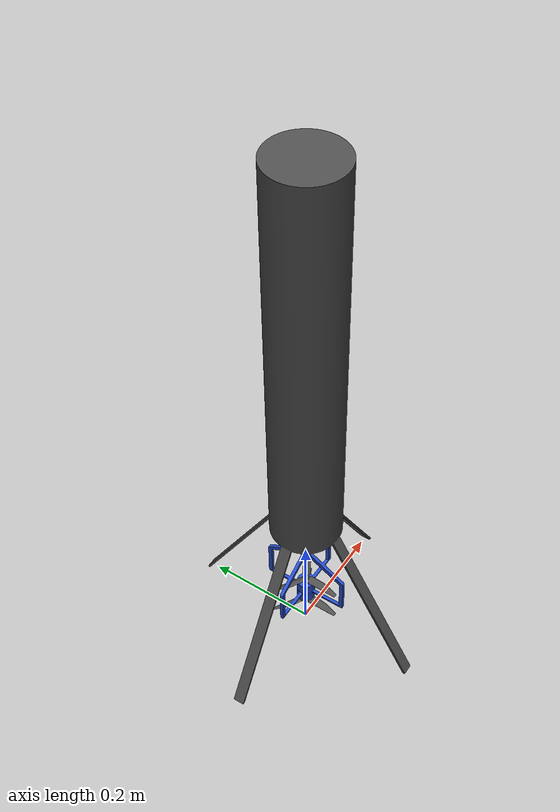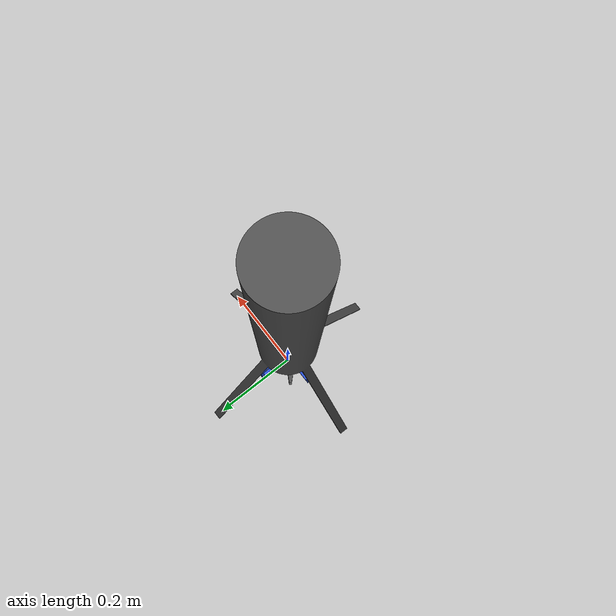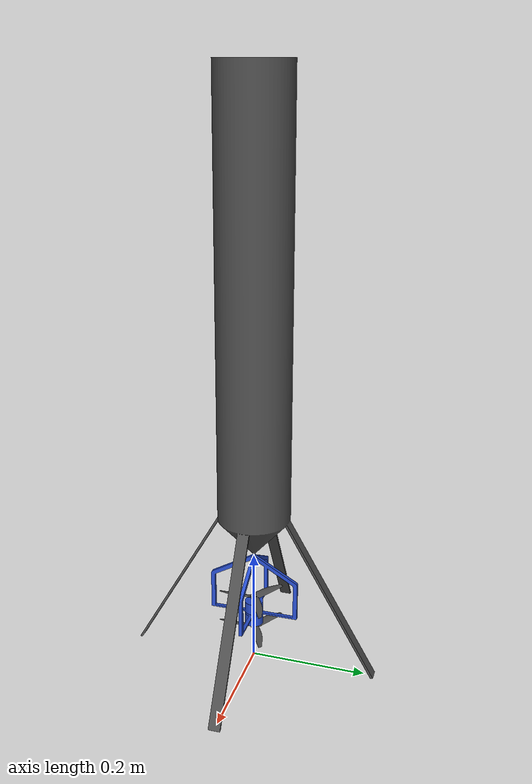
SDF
<?xml version='1.0'?>
<sdf version='1.6'>
  <model name='emborocket'>
    <link name='/imu_link'>
      <pose frame=''>0 0 0.75 0 -0 0</pose>
      <inertial>
        <pose frame=''>0 0 0 0 -0 0</pose>
        <mass>0</mass>
        <inertia>
          <ixx>0</ixx>
          <ixy>0</ixy>
          <ixz>0</ixz>
          <iyy>0</iyy>
          <iyz>0</iyz>
          <izz>0</izz>
        </inertia>
      </inertial>
      <self_collide>0</self_collide>
      <enable_wind>0</enable_wind>
      <kinematic>0</kinematic>
      <gravity>1</gravity>
    </link>
    <link name='base_link'>
      <pose frame=''>0 0 0.75 0 -0 0</pose>
      <inertial>
        <pose frame=''>0 0 0 0 -0 0</pose>
        <mass>1</mass>
        <inertia>
          <ixx>0.047931</ixx>
          <ixy>0</ixy>
          <ixz>0</ixz>
          <iyy>0.047931</iyy>
          <iyz>0</iyz>
          <izz>0.002112</izz>
        </inertia>
      </inertial>
      <gravity>1</gravity>
      <velocity_decay/>
      <self_collide>0</self_collide>
      <enable_wind>0</enable_wind>
      <kinematic>0</kinematic>
      <visual name='base_link_inertia_visual'>
        <pose frame=''>0 0 -0.75 0 -0 0</pose>
        <geometry>
          <mesh>
            <uri>/home/lukas/Firmware/Tools/sitl_gazebo/models/rotors_description/meshes/rocket_body.stl</uri>
            <scale>0.001 0.001 0.001</scale>
          </mesh>
        </geometry>
        <material>
          <script>
            <name>Gazebo/DarkGrey</name>
            <uri>file://media/materials/scripts/gazebo.material</uri>
          </script>
          <shader type='pixel'>
            <normal_map>__default__</normal_map>
          </shader>
          <ambient>0.175 0.175 0.175 1</ambient>
          <diffuse>0.175 0.175 0.175 1</diffuse>
          <specular>0.175 0.175 0.175 1</specular>
          <emissive>0 0 0 1</emissive>
        </material>
        <transparency>0</transparency>
        <cast_shadows>1</cast_shadows>
      </visual>
      <collision name='base_link_inertia_collision'>
        <laser_retro>0</laser_retro>
        <max_contacts>10</max_contacts>
        <pose frame=''>0 0 -0.745 0 -0 0.785</pose>
        <geometry>
          <box>
            <size>0.32 0.32 0.01</size>
          </box>
        </geometry>
        <surface>
          <friction>
            <ode>
              <mu>1</mu>
              <mu2>1</mu2>
              <fdir1>0 0 0</fdir1>
              <slip1>0</slip1>
              <slip2>0</slip2>
            </ode>
            <torsional>
              <coefficient>1</coefficient>
              <patch_radius>0</patch_radius>
              <surface_radius>0</surface_radius>
              <use_patch_radius>1</use_patch_radius>
              <ode>
                <slip>0</slip>
              </ode>
            </torsional>
          </friction>
          <bounce>
            <restitution_coefficient>0</restitution_coefficient>
            <threshold>1e+06</threshold>
          </bounce>
          <contact>
            <collide_without_contact>0</collide_without_contact>
            <collide_without_contact_bitmask>1</collide_without_contact_bitmask>
            <collide_bitmask>1</collide_bitmask>
            <ode>
              <soft_cfm>0</soft_cfm>
              <soft_erp>0.2</soft_erp>
              <kp>1e+13</kp>
              <kd>1</kd>
              <max_vel>0</max_vel>
              <min_depth>0.001</min_depth>
            </ode>
            <bullet>
              <split_impulse>1</split_impulse>
              <split_impulse_penetration_threshold>-0.01</split_impulse_penetration_threshold>
              <soft_cfm>0</soft_cfm>
              <soft_erp>0.2</soft_erp>
              <kp>1e+13</kp>
              <kd>1</kd>
            </bullet>
          </contact>
        </surface>
      </collision>
      <collision name='collision_2'>
        <laser_retro>0</laser_retro>
        <max_contacts>10</max_contacts>
        <pose frame=''>0 0 0.265 0 -0 0</pose>
        <geometry>
          <cylinder>
            <radius>0.065</radius>
            <length>0.01</length>
          </cylinder>
        </geometry>
        <surface>
          <friction>
            <ode>
              <mu>1</mu>
              <mu2>1</mu2>
              <fdir1>0 0 0</fdir1>
              <slip1>0</slip1>
              <slip2>0</slip2>
            </ode>
            <torsional>
              <coefficient>1</coefficient>
              <patch_radius>0</patch_radius>
              <surface_radius>0</surface_radius>
              <use_patch_radius>1</use_patch_radius>
              <ode>
                <slip>0</slip>
              </ode>
            </torsional>
          </friction>
          <bounce>
            <restitution_coefficient>0</restitution_coefficient>
            <threshold>1e+06</threshold>
          </bounce>
          <contact>
            <collide_without_contact>0</collide_without_contact>
            <collide_without_contact_bitmask>1</collide_without_contact_bitmask>
            <collide_bitmask>1</collide_bitmask>
            <ode>
              <soft_cfm>0</soft_cfm>
              <soft_erp>0.2</soft_erp>
              <kp>1e+13</kp>
              <kd>1</kd>
              <max_vel>0</max_vel>
              <min_depth>0.001</min_depth>
            </ode>
            <bullet>
              <split_impulse>1</split_impulse>
              <split_impulse_penetration_threshold>-0.01</split_impulse_penetration_threshold>
              <soft_cfm>0</soft_cfm>
              <soft_erp>0.2</soft_erp>
              <kp>1e+13</kp>
              <kd>1</kd>
            </bullet>
          </contact>
        </surface>
      </collision>
    </link>
    <link name='rotor_0'>
      <pose frame=''>0 0 0.2019 0 -0 0</pose>
      <inertial>
        <pose frame=''>0 0 0 0 -0 0</pose>
        <mass>0.005</mass>
        <inertia>
          <ixx>9.7e-07</ixx>
          <ixy>0</ixy>
          <ixz>0</ixz>
          <iyy>0.0002731</iyy>
          <iyz>0</iyz>
          <izz>0.000274</izz>
        </inertia>
      </inertial>
      <gravity>1</gravity>
      <velocity_decay/>
      <self_collide>0</self_collide>
      <enable_wind>0</enable_wind>
      <kinematic>0</kinematic>
      <visual name='rotor_0_visual'>
        <pose frame=''>0 0 0 0 -0 0</pose>
        <geometry>
          <mesh>
            <uri>/home/lukas/Firmware/Tools/sitl_gazebo/models/rotors_description/meshes/propeller_mount.stl</uri>
            <scale>0.001 0.001 0.001</scale>
          </mesh>
        </geometry>
        <material>
          <script>
            <name>Gazebo/Blue</name>
            <uri>file://media/materials/scripts/gazebo.material</uri>
          </script>
          <shader type='pixel'>
            <normal_map>__default__</normal_map>
          </shader>
          <ambient>0 0 1 1</ambient>
          <diffuse>0 0 1 1</diffuse>
          <specular>0.1 0.1 0.1 1</specular>
          <emissive>0 0 0 1</emissive>
        </material>
        <transparency>0</transparency>
        <cast_shadows>1</cast_shadows>
      </visual>
    </link>
    <link name='rotor_1'>
      <pose frame=''>0 0 0.1176 0 -0 0</pose>
      <inertial>
        <pose frame=''>0 0 0 0 -0 0</pose>
        <mass>0</mass>
        <inertia>
          <ixx>0</ixx>
          <ixy>0</ixy>
          <ixz>0</ixz>
          <iyy>0</iyy>
          <iyz>0</iyz>
          <izz>0</izz>
        </inertia>
      </inertial>
      <gravity>1</gravity>
      <velocity_decay/>
      <self_collide>0</self_collide>
      <enable_wind>0</enable_wind>
      <kinematic>0</kinematic>
      <visual name='rotor_1_visual'>
        <pose frame=''>0 -0.009 0 1.571 -0 0</pose>
        <geometry>
          <mesh>
            <uri>/home/lukas/Firmware/Tools/sitl_gazebo/models/rotors_description/meshes/propeller.stl</uri>
            <scale>0.001 0.001 0.001</scale>
          </mesh>
        </geometry>
        <material>
          <script>
            <name>Gazebo/DarkGrey</name>
            <uri>file://media/materials/scripts/gazebo.material</uri>
          </script>
          <shader type='pixel'>
            <normal_map>__default__</normal_map>
          </shader>
          <ambient>0.175 0.175 0.175 1</ambient>
          <diffuse>0.175 0.175 0.175 1</diffuse>
          <specular>0.175 0.175 0.175 1</specular>
          <emissive>0 0 0 1</emissive>
        </material>
        <transparency>0</transparency>
        <cast_shadows>1</cast_shadows>
      </visual>
    </link>
    <link name='rotor_3'>
      <pose frame=''>0 0 0.059 0 -0 0</pose>
      <inertial>
        <pose frame=''>0 0 0 0 -0 0</pose>
        <mass>0</mass>
        <inertia>
          <ixx>0</ixx>
          <ixy>0</ixy>
          <ixz>0</ixz>
          <iyy>0</iyy>
          <iyz>0</iyz>
          <izz>0</izz>
        </inertia>
      </inertial>
      <gravity>1</gravity>
      <velocity_decay/>
      <self_collide>0</self_collide>
      <enable_wind>0</enable_wind>
      <kinematic>0</kinematic>
      <visual name='rotor_3_visual'>
        <pose frame=''>0 -0.009 0 1.571 -0 0</pose>
        <geometry>
          <mesh>
            <uri>/home/lukas/Firmware/Tools/sitl_gazebo/models/rotors_description/meshes/propeller.stl</uri>
            <scale>0.001 0.001 0.001</scale>
          </mesh>
        </geometry>
        <material>
          <script>
            <name>Gazebo/DarkGrey</name>
            <uri>file://media/materials/scripts/gazebo.material</uri>
          </script>
          <shader type='pixel'>
            <normal_map>__default__</normal_map>
          </shader>
          <ambient>0.175 0.175 0.175 1</ambient>
          <diffuse>0.175 0.175 0.175 1</diffuse>
          <specular>0.175 0.175 0.175 1</specular>
          <emissive>0 0 0 1</emissive>
        </material>
        <transparency>0</transparency>
        <cast_shadows>1</cast_shadows>
      </visual>
    </link>
    <model name='gps0'>
      <link name='link'>
        <pose frame=''>0 0 0.75 0 -0 0</pose>
        <inertial>
          <pose frame=''>0 0 0 0 -0 0</pose>
          <mass>0.01</mass>
          <inertia>
            <ixx>2.1733e-06</ixx>
            <ixy>0</ixy>
            <ixz>0</ixz>
            <iyy>2.1733e-06</iyy>
            <iyz>0</iyz>
            <izz>1.8e-07</izz>
          </inertia>
        </inertial>
        <visual name='visual'>
          <geometry>
            <cylinder>
              <radius>0.01</radius>
              <length>0.002</length>
            </cylinder>
          </geometry>
          <material>
            <script>
              <name>Gazebo/Black</name>
              <uri>__default__</uri>
            </script>
          </material>
        </visual>
        <sensor name='gps' type='gps'>
          <pose frame=''>0 0 0 0 -0 0</pose>
          <plugin name='gps_plugin' filename='libgazebo_gps_plugin.so'>
            <robotNamespace/>
            <gpsNoise>1</gpsNoise>
            <gpsXYRandomWalk>2.0</gpsXYRandomWalk>
            <gpsZRandomWalk>4.0</gpsZRandomWalk>
            <gpsXYNoiseDensity>0.0002</gpsXYNoiseDensity>
            <gpsZNoiseDensity>0.0004</gpsZNoiseDensity>
            <gpsVXYNoiseDensity>0.2</gpsVXYNoiseDensity>
            <gpsVZNoiseDensity>0.4</gpsVZNoiseDensity>
          </plugin>
          <gps/>
        </sensor>
        <self_collide>0</self_collide>
        <enable_wind>0</enable_wind>
        <kinematic>0</kinematic>
      </link>
      <pose frame=''>0 0 0 0 -0 0</pose>
    </model>
    <joint name='/imu_joint' type='revolute'>
      <parent>base_link</parent>
      <child>/imu_link</child>
      <pose frame=''>0 0 0 0 -0 0</pose>
      <axis>
        <xyz>1 0 0</xyz>
        <use_parent_model_frame>1</use_parent_model_frame>
        <limit>
          <lower>0</lower>
          <upper>0</upper>
          <effort>0</effort>
          <velocity>0</velocity>
        </limit>
        <dynamics>
          <spring_reference>0</spring_reference>
          <spring_stiffness>0</spring_stiffness>
          <damping>0</damping>
          <friction>0</friction>
        </dynamics>
      </axis>
      <physics>
        <ode>
          <limit>
            <cfm>0</cfm>
            <erp>0.2</erp>
          </limit>
          <suspension>
            <cfm>0</cfm>
            <erp>0.2</erp>
          </suspension>
        </ode>
      </physics>
    </joint>
    <joint name='gimbal_joint' type='revolute2'>
      <parent>base_link</parent>
      <child>rotor_0</child>
      <pose frame=''>0 0 0 0 -0 0</pose>
      <axis>
        <xyz>1 0 0</xyz>
        <use_parent_model_frame>1</use_parent_model_frame>
        <limit>
          <lower>-0.349</lower>
          <upper>0.349</upper>
          <effort>-1</effort>
          <velocity>-1</velocity>
        </limit>
        <dynamics>
          <spring_reference>0</spring_reference>
          <spring_stiffness>0</spring_stiffness>
          <damping>0</damping>
          <friction>0</friction>
        </dynamics>
      </axis>
      <axis2>
        <xyz>0 1 0</xyz>
        <use_parent_model_frame>0</use_parent_model_frame>
        <dynamics>
          <spring_reference>0</spring_reference>
          <spring_stiffness>0</spring_stiffness>
          <damping>0</damping>
          <friction>0</friction>
        </dynamics>
        <limit>
          <lower>-0.349</lower>
          <upper>0.349</upper>
          <effort>-1</effort>
          <velocity>-1</velocity>
        </limit>
      </axis2>
      <physics>
        <ode>
          <limit>
            <cfm>0</cfm>
            <erp>0.2</erp>
          </limit>
          <suspension>
            <cfm>0</cfm>
            <erp>0.2</erp>
          </suspension>
        </ode>
      </physics>
    </joint>
    <joint name='gps0_joint' type='fixed'>
      <parent>base_link</parent>
      <child>gps0::link</child>
      <pose frame=''>0 0 0 0 -0 0</pose>
      <physics>
        <ode>
          <limit>
            <cfm>0</cfm>
            <erp>0.2</erp>
          </limit>
          <suspension>
            <cfm>0</cfm>
            <erp>0.2</erp>
          </suspension>
        </ode>
      </physics>
    </joint>
    <joint name='rotor_1_joint' type='revolute'>
      <parent>rotor_0</parent>
      <child>rotor_1</child>
      <pose frame=''>0 0 0 0 -0 0</pose>
      <axis>
        <xyz>0 0 1</xyz>
        <use_parent_model_frame>1</use_parent_model_frame>
        <limit>
          <lower>-1e+16</lower>
          <upper>1e+16</upper>
          <effort>-1</effort>
          <velocity>-1</velocity>
        </limit>
        <dynamics>
          <spring_reference>0</spring_reference>
          <spring_stiffness>0</spring_stiffness>
          <damping>0</damping>
          <friction>0</friction>
        </dynamics>
      </axis>
      <physics>
        <ode>
          <limit>
            <cfm>0</cfm>
            <erp>0.2</erp>
          </limit>
          <suspension>
            <cfm>0</cfm>
            <erp>0.2</erp>
          </suspension>
        </ode>
      </physics>
    </joint>
    <joint name='rotor_3_joint' type='revolute'>
      <parent>rotor_0</parent>
      <child>rotor_3</child>
      <pose frame=''>0 0 0 0 -0 0</pose>
      <axis>
        <xyz>0 0 1</xyz>
        <use_parent_model_frame>1</use_parent_model_frame>
        <limit>
          <lower>-1e+16</lower>
          <upper>1e+16</upper>
          <effort>-1</effort>
          <velocity>-1</velocity>
        </limit>
        <dynamics>
          <spring_reference>0</spring_reference>
          <spring_stiffness>0</spring_stiffness>
          <damping>0</damping>
          <friction>0</friction>
        </dynamics>
      </axis>
      <physics>
        <ode>
          <limit>
            <cfm>0</cfm>
            <erp>0.2</erp>
          </limit>
          <suspension>
            <cfm>0</cfm>
            <erp>0.2</erp>
          </suspension>
        </ode>
      </physics>
    </joint>
    <static>0</static>
    <allow_auto_disable>1</allow_auto_disable>
    <plugin name='back_left_motor_model' filename='libgazebo_motor_model.so'>
      <robotNamespace/>
      <jointName>rotor_1_joint</jointName>
      <linkName>rotor_1</linkName>
      <turningDirection>ccw</turningDirection>
      <timeConstantUp>0.0125</timeConstantUp>
      <timeConstantDown>0.025</timeConstantDown>
      <maxRotVelocity>1100</maxRotVelocity>
      <motorConstant>5.84e-06</motorConstant>
      <momentConstant>0.06</momentConstant>
      <commandSubTopic>/gazebo/command/motor_speed</commandSubTopic>
      <motorNumber>1</motorNumber>
      <rotorDragCoefficient>0.000175</rotorDragCoefficient>
      <rollingMomentCoefficient>1e-06</rollingMomentCoefficient>
      <motorSpeedPubTopic>/motor_speed/1</motorSpeedPubTopic>
      <rotorVelocitySlowdownSim>10</rotorVelocitySlowdownSim>
    </plugin>
    <plugin name='back_right_motor_model' filename='libgazebo_motor_model.so'>
      <robotNamespace/>
      <jointName>rotor_3_joint</jointName>
      <linkName>rotor_3</linkName>
      <turningDirection>cw</turningDirection>
      <timeConstantUp>0.0125</timeConstantUp>
      <timeConstantDown>0.025</timeConstantDown>
      <maxRotVelocity>1100</maxRotVelocity>
      <motorConstant>5.84e-06</motorConstant>
      <momentConstant>0.06</momentConstant>
      <commandSubTopic>/gazebo/command/motor_speed</commandSubTopic>
      <motorNumber>3</motorNumber>
      <rotorDragCoefficient>0.000175</rotorDragCoefficient>
      <rollingMomentCoefficient>1e-06</rollingMomentCoefficient>
      <motorSpeedPubTopic>/motor_speed/3</motorSpeedPubTopic>
      <rotorVelocitySlowdownSim>10</rotorVelocitySlowdownSim>
    </plugin>
    <plugin name='barometer_plugin' filename='libgazebo_barometer_plugin.so'>
      <robotNamespace/>
      <pubRate>50</pubRate>
      <baroTopic>/baro</baroTopic>
      <baroDriftPaPerSec>0</baroDriftPaPerSec>
    </plugin>
    <plugin name='front_left_motor_model' filename='libgazebo_motor_model.so'>
      <robotNamespace/>
      <jointName>rotor_2_joint</jointName>
      <linkName>rotor_2</linkName>
      <turningDirection>cw</turningDirection>
      <timeConstantUp>0.0125</timeConstantUp>
      <timeConstantDown>0.025</timeConstantDown>
      <maxRotVelocity>1100</maxRotVelocity>
      <motorConstant>5.84e-06</motorConstant>
      <momentConstant>0.06</momentConstant>
      <commandSubTopic>/gazebo/command/motor_speed</commandSubTopic>
      <motorNumber>2</motorNumber>
      <rotorDragCoefficient>0.000175</rotorDragCoefficient>
      <rollingMomentCoefficient>1e-06</rollingMomentCoefficient>
      <motorSpeedPubTopic>/motor_speed/2</motorSpeedPubTopic>
      <rotorVelocitySlowdownSim>10</rotorVelocitySlowdownSim>
    </plugin>
    <plugin name='front_right_motor_model' filename='libgazebo_motor_model.so'>
      <robotNamespace/>
      <jointName>rotor_0_joint</jointName>
      <linkName>rotor_0</linkName>
      <turningDirection>ccw</turningDirection>
      <timeConstantUp>0.0125</timeConstantUp>
      <timeConstantDown>0.025</timeConstantDown>
      <maxRotVelocity>1100</maxRotVelocity>
      <motorConstant>5.84e-06</motorConstant>
      <momentConstant>0.06</momentConstant>
      <commandSubTopic>/gazebo/command/motor_speed</commandSubTopic>
      <motorNumber>0</motorNumber>
      <rotorDragCoefficient>0.000175</rotorDragCoefficient>
      <rollingMomentCoefficient>1e-06</rollingMomentCoefficient>
      <motorSpeedPubTopic>/motor_speed/0</motorSpeedPubTopic>
      <rotorVelocitySlowdownSim>10</rotorVelocitySlowdownSim>
    </plugin>
    <plugin name='groundtruth_plugin' filename='libgazebo_groundtruth_plugin.so'>
      <robotNamespace/>
    </plugin>
    <plugin name='magnetometer_plugin' filename='libgazebo_magnetometer_plugin.so'>
      <robotNamespace/>
      <pubRate>100</pubRate>
      <noiseDensity>0.0004</noiseDensity>
      <randomWalk>6.4e-06</randomWalk>
      <biasCorrelationTime>600</biasCorrelationTime>
      <magTopic>/mag</magTopic>
    </plugin>
    <plugin name='mavlink_interface' filename='libgazebo_mavlink_interface.so'>
      <robotNamespace/>
      <imuSubTopic>/imu</imuSubTopic>
      <magSubTopic>/mag</magSubTopic>
      <baroSubTopic>/baro</baroSubTopic>
      <mavlink_addr>INADDR_ANY</mavlink_addr>
      <mavlink_udp_port>14560</mavlink_udp_port>
      <mavlink_tcp_port>4560</mavlink_tcp_port>
      <serialEnabled>0</serialEnabled>
      <serialDevice>/dev/ttyACM0</serialDevice>
      <baudRate>921600</baudRate>
      <qgc_addr>INADDR_ANY</qgc_addr>
      <qgc_udp_port>14550</qgc_udp_port>
      <sdk_addr>INADDR_ANY</sdk_addr>
      <sdk_udp_port>14540</sdk_udp_port>
      <hil_mode>0</hil_mode>
      <hil_state_level>0</hil_state_level>
      <vehicle_is_tailsitter>0</vehicle_is_tailsitter>
      <send_vision_estimation>0</send_vision_estimation>
      <send_odometry>1</send_odometry>
      <enable_lockstep>1</enable_lockstep>
      <use_tcp>1</use_tcp>
      <motorSpeedCommandPubTopic>/gazebo/command/motor_speed</motorSpeedCommandPubTopic>
      <control_channels>
        <channel name='rotor1'>
          <input_index>0</input_index>
          <input_offset>0</input_offset>
          <input_scaling>1000</input_scaling>
          <zero_position_disarmed>0</zero_position_disarmed>
          <zero_position_armed>100</zero_position_armed>
          <joint_control_type>velocity</joint_control_type>
        </channel>
        <channel name='rotor2'>
          <input_index>1</input_index>
          <input_offset>0</input_offset>
          <input_scaling>1000</input_scaling>
          <zero_position_disarmed>0</zero_position_disarmed>
          <zero_position_armed>100</zero_position_armed>
          <joint_control_type>velocity</joint_control_type>
        </channel>
        <channel name='rotor3'>
          <input_index>2</input_index>
          <input_offset>0</input_offset>
          <input_scaling>1000</input_scaling>
          <zero_position_disarmed>0</zero_position_disarmed>
          <zero_position_armed>100</zero_position_armed>
          <joint_control_type>velocity</joint_control_type>
        </channel>
        <channel name='rotor4'>
          <input_index>3</input_index>
          <input_offset>0</input_offset>
          <input_scaling>1000</input_scaling>
          <zero_position_disarmed>0</zero_position_disarmed>
          <zero_position_armed>100</zero_position_armed>
          <joint_control_type>velocity</joint_control_type>
        </channel>
        <channel name='rotor5'>
          <input_index>4</input_index>
          <input_offset>1</input_offset>
          <input_scaling>324.6</input_scaling>
          <zero_position_disarmed>0</zero_position_disarmed>
          <zero_position_armed>0</zero_position_armed>
          <joint_control_type>velocity</joint_control_type>
          <joint_control_pid>
            <p>0.1</p>
            <i>0</i>
            <d>0</d>
            <iMax>0.0</iMax>
            <iMin>0.0</iMin>
            <cmdMax>2</cmdMax>
            <cmdMin>-2</cmdMin>
          </joint_control_pid>
          <joint_name>zephyr_delta_wing::propeller_joint</joint_name>
        </channel>
        <channel name='rotor6'>
          <input_index>5</input_index>
          <input_offset>0</input_offset>
          <input_scaling>0.524</input_scaling>
          <zero_position_disarmed>0</zero_position_disarmed>
          <zero_position_armed>0</zero_position_armed>
          <joint_control_type>position</joint_control_type>
          <joint_name>zephyr_delta_wing::flap_left_joint</joint_name>
          <joint_control_pid>
            <p>10.0</p>
            <i>0</i>
            <d>0</d>
            <iMax>0</iMax>
            <iMin>0</iMin>
            <cmdMax>20</cmdMax>
            <cmdMin>-20</cmdMin>
          </joint_control_pid>
        </channel>
        <channel name='rotor7'>
          <input_index>6</input_index>
          <input_offset>0</input_offset>
          <input_scaling>0.524</input_scaling>
          <zero_position_disarmed>0</zero_position_disarmed>
          <zero_position_armed>0</zero_position_armed>
          <joint_control_type>position</joint_control_type>
          <joint_name>zephyr_delta_wing::flap_right_joint</joint_name>
          <joint_control_pid>
            <p>10.0</p>
            <i>0</i>
            <d>0</d>
            <iMax>0</iMax>
            <iMin>0</iMin>
            <cmdMax>20</cmdMax>
            <cmdMin>-20</cmdMin>
          </joint_control_pid>
        </channel>
        <channel name='rotor8'>
          <input_index>7</input_index>
          <input_offset>0</input_offset>
          <input_scaling>0.524</input_scaling>
          <zero_position_disarmed>0</zero_position_disarmed>
          <zero_position_armed>0</zero_position_armed>
          <joint_control_type>position</joint_control_type>
        </channel>
      </control_channels>
    </plugin>
    <plugin name='rosbag' filename='libgazebo_multirotor_base_plugin.so'>
      <robotNamespace/>
      <linkName>base_link</linkName>
      <rotorVelocitySlowdownSim>10</rotorVelocitySlowdownSim>
    </plugin>
    <plugin name='rotors_gazebo_imu_plugin' filename='libgazebo_imu_plugin.so'>
      <robotNamespace/>
      <linkName>/imu_link</linkName>
      <imuTopic>/imu</imuTopic>
      <gyroscopeNoiseDensity>0.00018665</gyroscopeNoiseDensity>
      <gyroscopeRandomWalk>3.8785e-05</gyroscopeRandomWalk>
      <gyroscopeBiasCorrelationTime>1000.0</gyroscopeBiasCorrelationTime>
      <gyroscopeTurnOnBiasSigma>0.0087</gyroscopeTurnOnBiasSigma>
      <accelerometerNoiseDensity>0.00186</accelerometerNoiseDensity>
      <accelerometerRandomWalk>0.006</accelerometerRandomWalk>
      <accelerometerBiasCorrelationTime>300.0</accelerometerBiasCorrelationTime>
      <accelerometerTurnOnBiasSigma>0.196</accelerometerTurnOnBiasSigma>
    </plugin>
  </model>
</sdf>
